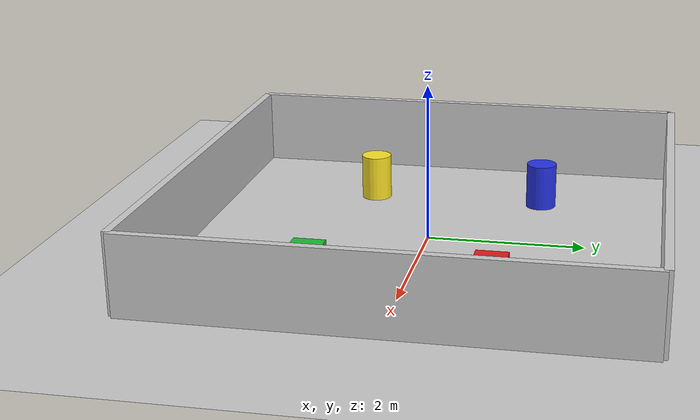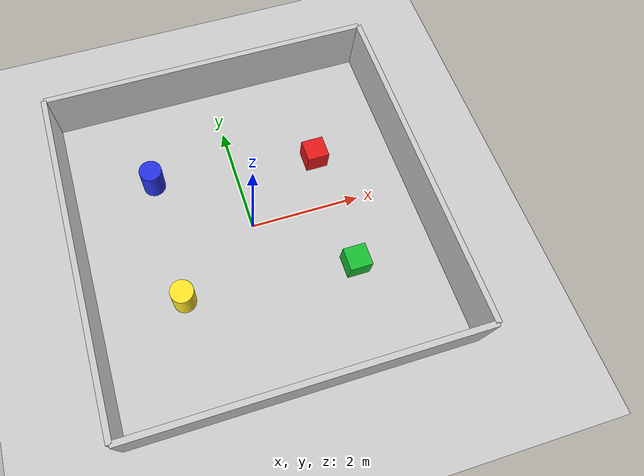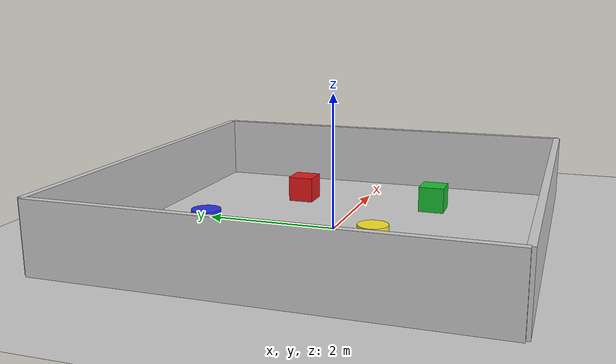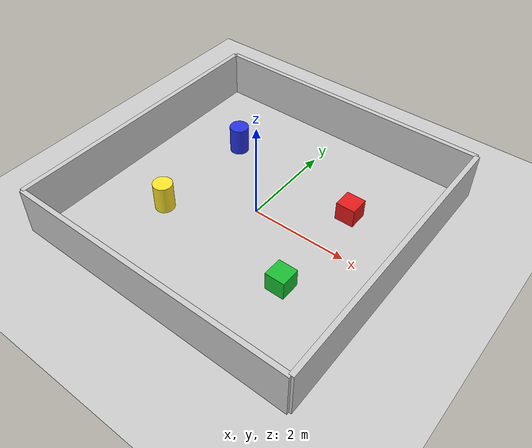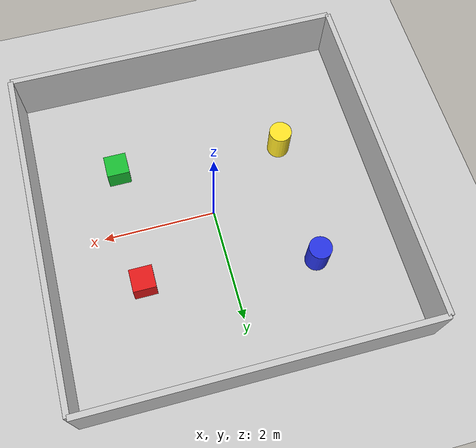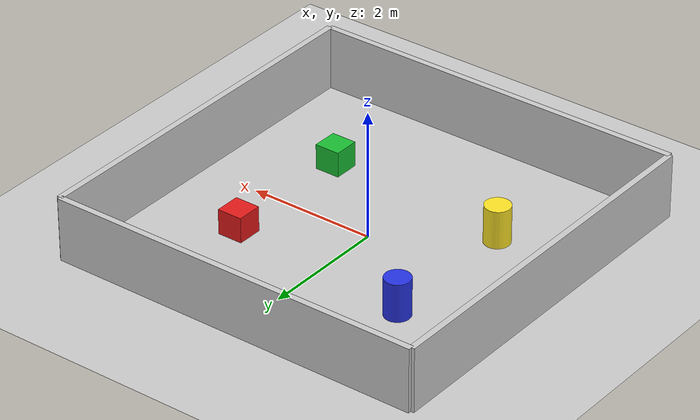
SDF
<?xml version="1.0"?>
<sdf version="1.6">
  <world name="vlm_room">

    <physics type="ode">
      <real_time_update_rate>1000.0</real_time_update_rate>
      <max_step_size>0.001</max_step_size>
    </physics>

    <include>
      <uri>model://sun</uri>
    </include>
    <include>
      <uri>model://ground_plane</uri>
    </include>

    <!-- 6x6 arena — smaller than Project 2's so the camera sees objects -->
    <model name="wall_north">
      <static>true</static>
      <pose>0 3 0.5 0 0 0</pose>
      <link name="link">
        <collision name="col"><geometry><box><size>6 0.1 1</size></box></geometry></collision>
        <visual name="vis"><geometry><box><size>6 0.1 1</size></box></geometry>
          <material><ambient>0.8 0.8 0.8 1</ambient></material></visual>
      </link>
    </model>

    <model name="wall_south">
      <static>true</static>
      <pose>0 -3 0.5 0 0 0</pose>
      <link name="link">
        <collision name="col"><geometry><box><size>6 0.1 1</size></box></geometry></collision>
        <visual name="vis"><geometry><box><size>6 0.1 1</size></box></geometry>
          <material><ambient>0.8 0.8 0.8 1</ambient></material></visual>
      </link>
    </model>

    <model name="wall_east">
      <static>true</static>
      <pose>3 0 0.5 0 0 0</pose>
      <link name="link">
        <collision name="col"><geometry><box><size>0.1 6 1</size></box></geometry></collision>
        <visual name="vis"><geometry><box><size>0.1 6 1</size></box></geometry>
          <material><ambient>0.8 0.8 0.8 1</ambient></material></visual>
      </link>
    </model>

    <model name="wall_west">
      <static>true</static>
      <pose>-3 0 0.5 0 0 0</pose>
      <link name="link">
        <collision name="col"><geometry><box><size>0.1 6 1</size></box></geometry></collision>
        <visual name="vis"><geometry><box><size>0.1 6 1</size></box></geometry>
          <material><ambient>0.8 0.8 0.8 1</ambient></material></visual>
      </link>
    </model>

    <!-- ═══ TARGET OBJECTS (saturated colours — easy for the VLM) ═══ -->
    <!-- Red cube — front-left quadrant -->
    <model name="red_block">
      <static>true</static>
      <pose>1.5 1.0 0.2 0 0 0</pose>
      <link name="link">
        <collision name="col"><geometry><box><size>0.4 0.4 0.4</size></box></geometry></collision>
        <visual name="vis"><geometry><box><size>0.4 0.4 0.4</size></box></geometry>
          <material>
            <ambient>0.8 0.05 0.05 1</ambient>
            <diffuse>0.9 0.1 0.1 1</diffuse>
          </material></visual>
      </link>
    </model>

    <!-- Green cube — front-right quadrant -->
    <model name="green_block">
      <static>true</static>
      <pose>1.5 -1.2 0.2 0 0 0</pose>
      <link name="link">
        <collision name="col"><geometry><box><size>0.4 0.4 0.4</size></box></geometry></collision>
        <visual name="vis"><geometry><box><size>0.4 0.4 0.4</size></box></geometry>
          <material>
            <ambient>0.05 0.6 0.15 1</ambient>
            <diffuse>0.1 0.75 0.2 1</diffuse>
          </material></visual>
      </link>
    </model>

    <!-- Blue cylinder — rear-left -->
    <model name="blue_cylinder">
      <static>true</static>
      <pose>-1.5 1.3 0.3 0 0 0</pose>
      <link name="link">
        <collision name="col"><geometry><cylinder><radius>0.2</radius><length>0.6</length></cylinder></geometry></collision>
        <visual name="vis"><geometry><cylinder><radius>0.2</radius><length>0.6</length></cylinder></geometry>
          <material>
            <ambient>0.1 0.15 0.8 1</ambient>
            <diffuse>0.15 0.2 0.9 1</diffuse>
          </material></visual>
      </link>
    </model>

    <!-- Yellow cylinder — rear-right -->
    <model name="yellow_cylinder">
      <static>true</static>
      <pose>-1.5 -1.0 0.3 0 0 0</pose>
      <link name="link">
        <collision name="col"><geometry><cylinder><radius>0.2</radius><length>0.6</length></cylinder></geometry></collision>
        <visual name="vis"><geometry><cylinder><radius>0.2</radius><length>0.6</length></cylinder></geometry>
          <material>
            <ambient>0.9 0.8 0.1 1</ambient>
            <diffuse>1.0 0.9 0.15 1</diffuse>
          </material></visual>
      </link>
    </model>

  </world>
</sdf>
